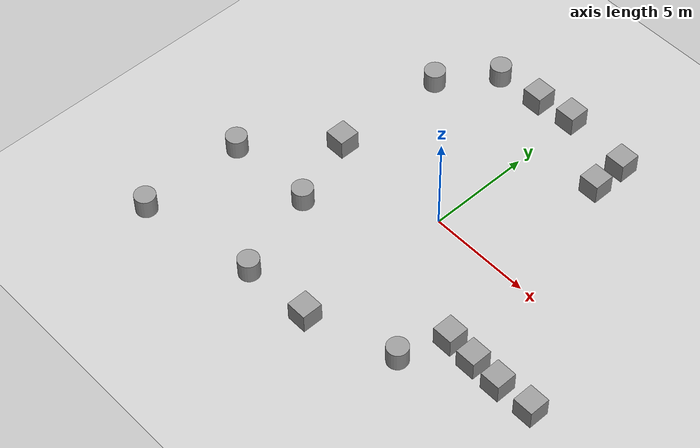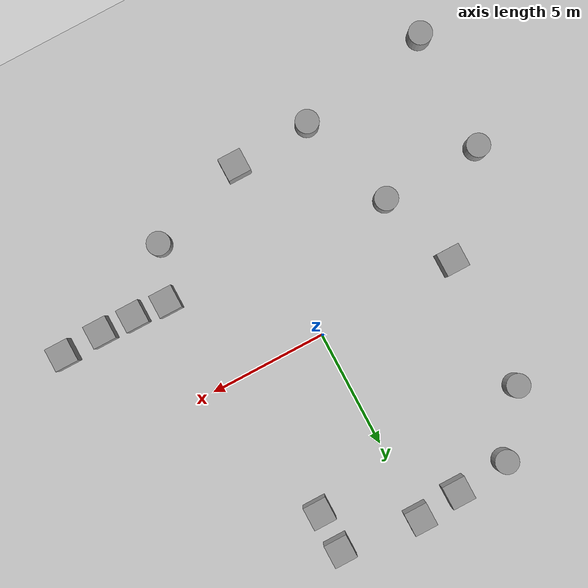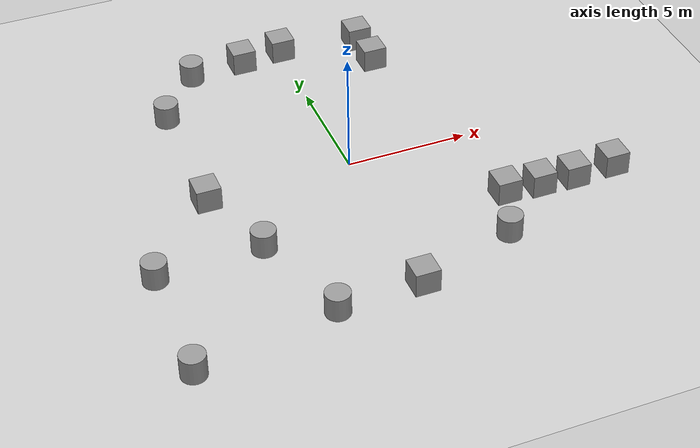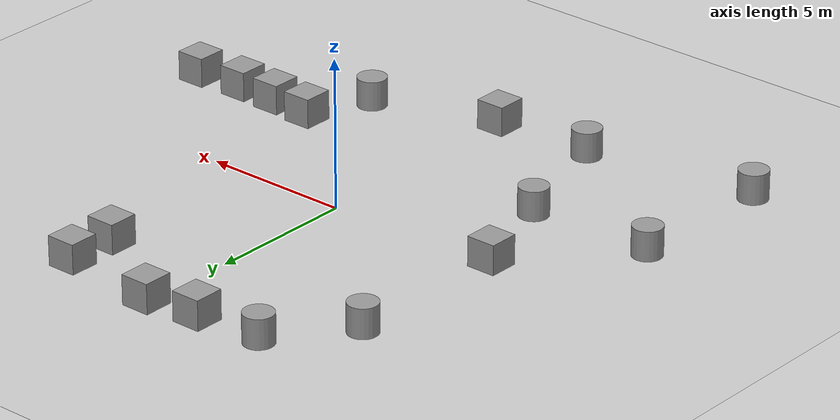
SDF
<sdf version="1.7">
 <world name="default">
  <physics type="ode">
   <max_step_size>0.002</max_step_size>
   <real_time_update_rate>500</real_time_update_rate>
   <real_time_factor>1</real_time_factor>
   <type>world</type>
   <iters>500</iters>
  </physics>
  <light name="sun" type="directional">
   <pose>0 0 10 0 -0 0</pose>
   <diffuse>0.8 0.8 0.8 1</diffuse>
   <specular>0.2 0.2 0.2 1</specular>
   <attenuation>
    <range>1000</range>
    <constant>0.9</constant>
    <linear>0.01</linear>
    <quadratic>0.001</quadratic>
   </attenuation>
   <direction>-0.5 0.1 -0.9</direction>
   <spot><inner_angle>0</inner_angle><outer_angle>0</outer_angle><falloff>0</falloff></spot>
  </light>
  <model name="ground_plane">
   <static>1</static>
   <link name="link">
    <collision name="collision">
     <geometry><plane><normal>0 0 1</normal><size>100 100</size></plane></geometry>
     <surface>
      <contact><collide_bitmask>65535</collide_bitmask></contact>
      <friction><ode><mu>100</mu><mu2>50</mu2></ode></friction>
     </surface>
    </collision>
    <visual name="visual">
     <cast_shadows>0</cast_shadows>
     <geometry><plane><normal>0 0 1</normal><size>100 100</size></plane></geometry>
     <material>
      <script><uri>file://media/materials/scripts/gazebo.material</uri><name>Gazebo/Grey</name></script>
     </material>
    </visual>
   </link>
  </model>
  <gravity>0 0 -9.8</gravity>
  <magnetic_field>6e-06 2.3e-05 -4.2e-05</magnetic_field>
  <atmosphere type="adiabatic"/>
  <scene><ambient>0.4 0.4 0.4 1</ambient><background>0.7 0.7 0.7 1</background><shadows>1</shadows></scene>
  <spherical_coordinates>
   <surface_model>EARTH_WGS84</surface_model>
   <latitude_deg>0</latitude_deg>
   <longitude_deg>0</longitude_deg>
   <elevation>0</elevation>
   <heading_deg>0</heading_deg>
  </spherical_coordinates>
  <model name="unit_box">
   <pose>-6.03489 -0.176697 0.5 0 -0 0</pose>
   <link name="link">
    <inertial>
     <mass>1</mass>
     <inertia>
      <ixx>0.166667</ixx>
      <ixy>0</ixy>
      <ixz>0</ixz>
      <iyy>0.166667</iyy>
      <iyz>0</iyz>
      <izz>0.166667</izz>
     </inertia>
    </inertial>
    <collision name="collision"><geometry><box><size>1 1 1</size></box></geometry></collision>
    <visual name="visual">
     <geometry><box><size>1 1 1</size></box></geometry>
     <material>
      <script><name>Gazebo/Grey</name><uri>file://media/materials/scripts/gazebo.material</uri></script>
     </material>
    </visual>
   </link>
  </model>
  <model name="unit_box_0">
   <pose>-0.094803 -7.68631 0.5 0 -0 0</pose>
   <link name="link">
    <inertial>
     <mass>1</mass>
     <inertia>
      <ixx>0.166667</ixx>
      <ixy>0</ixy>
      <ixz>0</ixz>
      <iyy>0.166667</iyy>
      <iyz>0</iyz>
      <izz>0.166667</izz>
     </inertia>
    </inertial>
    <collision name="collision"><geometry><box><size>1 1 1</size></box></geometry></collision>
    <visual name="visual">
     <geometry><box><size>1 1 1</size></box></geometry>
     <material>
      <script><name>Gazebo/Grey</name><uri>file://media/materials/scripts/gazebo.material</uri></script>
     </material>
    </visual>
   </link>
  </model>
  <model name="unit_box_1">
   <pose>0.009761 8.3216 0.5 0 -0 0</pose>
   <link name="link">
    <inertial>
     <mass>1</mass>
     <inertia>
      <ixx>0.166667</ixx>
      <ixy>0</ixy>
      <ixz>0</ixz>
      <iyy>0.166667</iyy>
      <iyz>0</iyz>
      <izz>0.166667</izz>
     </inertia>
    </inertial>
    <collision name="collision"><geometry><box><size>1 1 1</size></box></geometry></collision>
    <visual name="visual">
     <geometry><box><size>1 1 1</size></box></geometry>
     <material>
      <script><name>Gazebo/Grey</name><uri>file://media/materials/scripts/gazebo.material</uri></script>
     </material>
    </visual>
   </link>
  </model>
  <model name="unit_cylinder">
   <pose>-5.94433 5.482 0.5 0 -0 0</pose>
   <link name="link">
    <inertial>
     <mass>1</mass>
     <inertia><ixx>0.145833</ixx><ixy>0</ixy><ixz>0</ixz><iyy>0.145833</iyy><iyz>0</iyz><izz>0.125</izz></inertia>
    </inertial>
    <collision name="collision">
     <geometry><cylinder><radius>0.5</radius><length>1</length></cylinder></geometry>
    </collision>
    <visual name="visual">
     <geometry><cylinder><radius>0.5</radius><length>1</length></cylinder></geometry>
     <material>
      <script><name>Gazebo/Grey</name><uri>file://media/materials/scripts/gazebo.material</uri></script>
     </material>
    </visual>
   </link>
  </model>
  <model name="unit_cylinder_0">
   <pose>-4.10303 7.93307 0.5 0 -0 0</pose>
   <link name="link">
    <inertial>
     <mass>1</mass>
     <inertia><ixx>0.145833</ixx><ixy>0</ixy><ixz>0</ixz><iyy>0.145833</iyy><iyz>0</iyz><izz>0.125</izz></inertia>
    </inertial>
    <collision name="collision">
     <geometry><cylinder><radius>0.5</radius><length>1</length></cylinder></geometry>
    </collision>
    <visual name="visual">
     <geometry><cylinder><radius>0.5</radius><length>1</length></cylinder></geometry>
     <material>
      <script><name>Gazebo/Grey</name><uri>file://media/materials/scripts/gazebo.material</uri></script>
     </material>
    </visual>
   </link>
  </model>
  <model name="unit_cylinder_1">
   <pose>-4.84789 -3.60737 0.5 0 -0 0</pose>
   <link name="link">
    <inertial>
     <mass>1</mass>
     <inertia><ixx>0.145833</ixx><ixy>0</ixy><ixz>0</ixz><iyy>0.145833</iyy><iyz>0</iyz><izz>0.125</izz></inertia>
    </inertial>
    <collision name="collision">
     <geometry><cylinder><radius>0.5</radius><length>1</length></cylinder></geometry>
    </collision>
    <visual name="visual">
     <geometry><cylinder><radius>0.5</radius><length>1</length></cylinder></geometry>
     <material>
      <script><name>Gazebo/Grey</name><uri>file://media/materials/scripts/gazebo.material</uri></script>
     </material>
    </visual>
   </link>
  </model>
  <model name="unit_cylinder_2">
   <pose>-9.12841 -3.75778 0.5 0 -0 0</pose>
   <link name="link">
    <inertial>
     <mass>1</mass>
     <inertia><ixx>0.145833</ixx><ixy>0</ixy><ixz>0</ixz><iyy>0.145833</iyy><iyz>0</iyz><izz>0.125</izz></inertia>
    </inertial>
    <collision name="collision">
     <geometry><cylinder><radius>0.5</radius><length>1</length></cylinder></geometry>
    </collision>
    <visual name="visual">
     <geometry><cylinder><radius>0.5</radius><length>1</length></cylinder></geometry>
     <material>
      <script><name>Gazebo/Grey</name><uri>file://media/materials/scripts/gazebo.material</uri></script>
     </material>
    </visual>
   </link>
  </model>
  <model name="unit_cylinder_3">
   <pose>-9.23091 -8.86697 0.5 0 -0 0</pose>
   <link name="link">
    <inertial>
     <mass>1</mass>
     <inertia><ixx>0.145833</ixx><ixy>0</ixy><ixz>0</ixz><iyy>0.145833</iyy><iyz>0</iyz><izz>0.125</izz></inertia>
    </inertial>
    <collision name="collision">
     <geometry><cylinder><radius>0.5</radius><length>1</length></cylinder></geometry>
    </collision>
    <visual name="visual">
     <geometry><cylinder><radius>0.5</radius><length>1</length></cylinder></geometry>
     <material>
      <script><name>Gazebo/Grey</name><uri>file://media/materials/scripts/gazebo.material</uri></script>
     </material>
    </visual>
   </link>
  </model>
  <model name="unit_cylinder_4">
   <pose>-3.50072 -7.84795 0.5 0 -0 0</pose>
   <link name="link">
    <inertial>
     <mass>1</mass>
     <inertia><ixx>0.145833</ixx><ixy>0</ixy><ixz>0</ixz><iyy>0.145833</iyy><iyz>0</iyz><izz>0.125</izz></inertia>
    </inertial>
    <collision name="collision">
     <geometry><cylinder><radius>0.5</radius><length>1</length></cylinder></geometry>
    </collision>
    <visual name="visual">
     <geometry><cylinder><radius>0.5</radius><length>1</length></cylinder></geometry>
     <material>
      <script><name>Gazebo/Grey</name><uri>file://media/materials/scripts/gazebo.material</uri></script>
     </material>
    </visual>
   </link>
  </model>
  <model name="unit_cylinder_5">
   <pose>4.07681 -6.31926 0.5 0 -0 0</pose>
   <link name="link">
    <inertial>
     <mass>1</mass>
     <inertia><ixx>0.145833</ixx><ixy>0</ixy><ixz>0</ixz><iyy>0.145833</iyy><iyz>0</iyz><izz>0.125</izz></inertia>
    </inertial>
    <collision name="collision">
     <geometry><cylinder><radius>0.5</radius><length>1</length></cylinder></geometry>
    </collision>
    <visual name="visual">
     <geometry><cylinder><radius>0.5</radius><length>1</length></cylinder></geometry>
     <material>
      <script><name>Gazebo/Grey</name><uri>file://media/materials/scripts/gazebo.material</uri></script>
     </material>
    </visual>
   </link>
  </model>
  <model name="unit_box_2">
   <pose>6.36738 -4.23714 0.5 0 -0 0</pose>
   <link name="link">
    <inertial>
     <mass>1</mass>
     <inertia>
      <ixx>0.166667</ixx>
      <ixy>0</ixy>
      <ixz>0</ixz>
      <iyy>0.166667</iyy>
      <iyz>0</iyz>
      <izz>0.166667</izz>
     </inertia>
    </inertial>
    <collision name="collision"><geometry><box><size>1 1 1</size></box></geometry></collision>
    <visual name="visual">
     <geometry><box><size>1 1 1</size></box></geometry>
     <material>
      <script><name>Gazebo/Grey</name><uri>file://media/materials/scripts/gazebo.material</uri></script>
     </material>
    </visual>
   </link>
  </model>
  <model name="unit_box_3">
   <pose>7.82876 -4.28326 0.5 0 -0 0</pose>
   <link name="link">
    <inertial>
     <mass>1</mass>
     <inertia>
      <ixx>0.166667</ixx>
      <ixy>0</ixy>
      <ixz>0</ixz>
      <iyy>0.166667</iyy>
      <iyz>0</iyz>
      <izz>0.166667</izz>
     </inertia>
    </inertial>
    <collision name="collision"><geometry><box><size>1 1 1</size></box></geometry></collision>
    <visual name="visual">
     <geometry><box><size>1 1 1</size></box></geometry>
     <material>
      <script><name>Gazebo/Grey</name><uri>file://media/materials/scripts/gazebo.material</uri></script>
     </material>
    </visual>
   </link>
  </model>
  <model name="unit_box_4">
   <pose>4.92356 -4.13229 0.5 0 -0 0</pose>
   <link name="link">
    <inertial>
     <mass>1</mass>
     <inertia>
      <ixx>0.166667</ixx>
      <ixy>0</ixy>
      <ixz>0</ixz>
      <iyy>0.166667</iyy>
      <iyz>0</iyz>
      <izz>0.166667</izz>
     </inertia>
    </inertial>
    <collision name="collision"><geometry><box><size>1 1 1</size></box></geometry></collision>
    <visual name="visual">
     <geometry><box><size>1 1 1</size></box></geometry>
     <material>
      <script><name>Gazebo/Grey</name><uri>file://media/materials/scripts/gazebo.material</uri></script>
     </material>
    </visual>
   </link>
  </model>
  <model name="unit_box_5">
   <pose>9.5896 -4.19637 0.5 0 -0 0</pose>
   <link name="link">
    <inertial>
     <mass>1</mass>
     <inertia>
      <ixx>0.166667</ixx>
      <ixy>0</ixy>
      <ixz>0</ixz>
      <iyy>0.166667</iyy>
      <iyz>0</iyz>
      <izz>0.166667</izz>
     </inertia>
    </inertial>
    <collision name="collision"><geometry><box><size>1 1 1</size></box></geometry></collision>
    <visual name="visual">
     <geometry><box><size>1 1 1</size></box></geometry>
     <material>
      <script><name>Gazebo/Grey</name><uri>file://media/materials/scripts/gazebo.material</uri></script>
     </material>
    </visual>
   </link>
  </model>
  <model name="unit_box_6">
   <pose>3.45227 6.22998 0.5 0 -0 0</pose>
   <link name="link">
    <inertial>
     <mass>1</mass>
     <inertia>
      <ixx>0.166667</ixx>
      <ixy>0</ixy>
      <ixz>0</ixz>
      <iyy>0.166667</iyy>
      <iyz>0</iyz>
      <izz>0.166667</izz>
     </inertia>
    </inertial>
    <collision name="collision"><geometry><box><size>1 1 0.999999</size></box></geometry></collision>
    <visual name="visual">
     <geometry><box><size>1 1 0.999999</size></box></geometry>
     <material>
      <script><name>Gazebo/Grey</name><uri>file://media/materials/scripts/gazebo.material</uri></script>
     </material>
    </visual>
   </link>
  </model>
  <model name="unit_box_7">
   <pose>3.42226 7.93282 0.5 0 -0 0</pose>
   <link name="link">
    <inertial>
     <mass>1</mass>
     <inertia>
      <ixx>0.166667</ixx>
      <ixy>0</ixy>
      <ixz>0</ixz>
      <iyy>0.166667</iyy>
      <iyz>0</iyz>
      <izz>0.166667</izz>
     </inertia>
    </inertial>
    <collision name="collision"><geometry><box><size>1 1 1</size></box></geometry></collision>
    <visual name="visual">
     <geometry><box><size>1 1 1</size></box></geometry>
     <material>
      <script><name>Gazebo/Grey</name><uri>file://media/materials/scripts/gazebo.material</uri></script>
     </material>
    </visual>
   </link>
  </model>
  <model name="unit_box_8">
   <pose>-1.82374 8.10794 0.5 0 -0 0</pose>
   <link name="link">
    <inertial>
     <mass>1</mass>
     <inertia>
      <ixx>0.166667</ixx>
      <ixy>0</ixy>
      <ixz>0</ixz>
      <iyy>0.166667</iyy>
      <iyz>0</iyz>
      <izz>0.166667</izz>
     </inertia>
    </inertial>
    <collision name="collision"><geometry><box><size>1 1 1</size></box></geometry></collision>
    <visual name="visual">
     <geometry><box><size>1 1 1</size></box></geometry>
     <material>
      <script><name>Gazebo/Grey</name><uri>file://media/materials/scripts/gazebo.material</uri></script>
     </material>
    </visual>
   </link>
  </model>
 </world>
</sdf>
